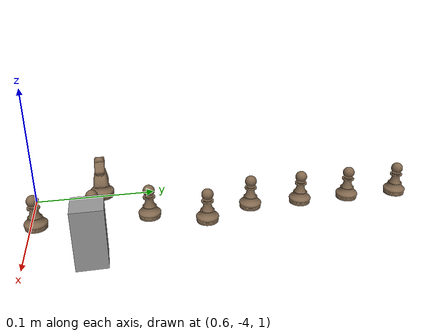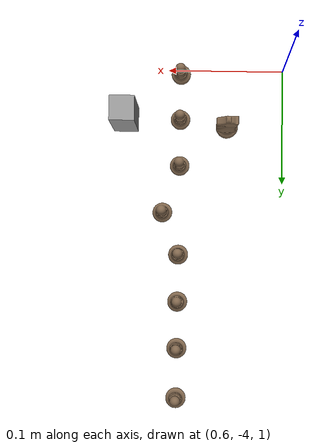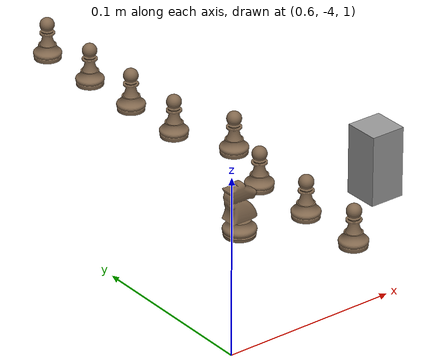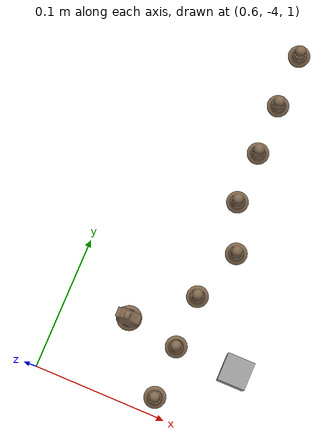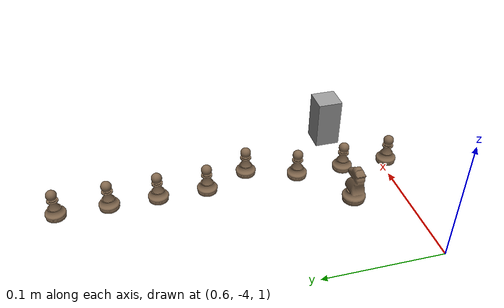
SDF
<sdf version="1.7">
 <world name="default">
  <model name="ground_plane">
   <static>1</static>
   <link name="link">
    <collision name="collision">
     <geometry><plane><normal>0 0 1</normal><size>100 100</size></plane></geometry>
     <surface>
      <contact><collide_bitmask>65535</collide_bitmask></contact>
      <friction><ode><mu>100</mu><mu2>50</mu2></ode></friction>
     </surface>
    </collision>
    <visual name="visual">
     <cast_shadows>0</cast_shadows>
     <geometry><plane><normal>0 0 1</normal><size>100 100</size></plane></geometry>
     <material>
      <script><uri>file://media/materials/scripts/gazebo.material</uri><name>Gazebo/Grey</name></script>
     </material>
    </visual>
   </link>
  </model>
  <model name="knight_white">
   <static>0</static>
   <link name="link_0">
    <inertial>
     <mass>0.01</mass>
     <inertia><ixx>1e-06</ixx><ixy>0</ixy><ixz>0</ixz><iyy>1e-06</iyy><iyz>0</iyz><izz>5e-07</izz></inertia>
    </inertial>
    <kinematic>1</kinematic>
    <visual name="visual">
     <geometry><mesh><uri>model://knight_white/meshes/knight.dae</uri><scale>1 1 1</scale></mesh></geometry>
     <material>
      <lighting>1</lighting>
      <script><uri>file://media/materials/scripts/gazebo.material</uri><name>Gazebo/Grey</name></script>
      <shader type="vertex"><normal_map>__default__</normal_map></shader>
      <ambient>1 0.894 0.71 1</ambient>
      <diffuse>0.5 0.4 0.3 1</diffuse>
      <specular>0.01 0.01 0.01 1</specular>
      <emissive>0 0 0 1</emissive>
     </material>
    </visual>
    <collision name="collision">
     <pose>0 0 0.015 0 -0 0</pose>
     <geometry><cylinder><radius>0.005</radius><length>0.03</length></cylinder></geometry>
     <surface>
      <friction><ode><mu>1</mu><mu2>1</mu2></ode></friction>
      <contact><ode><kp>1e+07</kp><kd>1</kd><max_vel>0.001</max_vel><min_depth>0.1</min_depth></ode></contact>
     </surface>
    </collision>
   </link>
   <pose>0.649689 -3.94259 1.02621 0 -0 1.57236</pose>
  </model>
  <model name="pawn_white">
   <static>0</static>
   <link name="link_0">
    <inertial>
     <mass>0.01</mass>
     <inertia><ixx>1e-06</ixx><ixy>0</ixy><ixz>0</ixz><iyy>1e-06</iyy><iyz>0</iyz><izz>5e-07</izz></inertia>
    </inertial>
    <kinematic>1</kinematic>
    <visual name="visual">
     <geometry><mesh><uri>model://pawn_white/meshes/pawn.dae</uri><scale>1 1 1</scale></mesh></geometry>
     <material>
      <lighting>1</lighting>
      <script><uri>file://media/materials/scripts/gazebo.material</uri><name>Gazebo/Grey</name></script>
      <shader type="vertex"><normal_map>__default__</normal_map></shader>
      <ambient>1 0.894 0.71 1</ambient>
      <diffuse>0.5 0.4 0.3 1</diffuse>
      <specular>0.01 0.01 0.01 1</specular>
      <emissive>0 0 0 1</emissive>
     </material>
    </visual>
    <collision name="collision">
     <pose>0 0 0.015 0 -0 0</pose>
     <geometry><cylinder><radius>0.005</radius><length>0.03</length></cylinder></geometry>
     <surface>
      <friction><ode><mu>1</mu><mu2>1</mu2></ode></friction>
      <contact><ode><kp>1e+07</kp><kd>1</kd><max_vel>0.001</max_vel><min_depth>0.1</min_depth></ode></contact>
     </surface>
    </collision>
   </link>
   <pose>0.688244 -3.83616 1.02621 0 -0 0</pose>
  </model>
  <model name="pawn_white_clone">
   <static>0</static>
   <link name="link_0">
    <inertial>
     <mass>0.01</mass>
     <inertia><ixx>1e-06</ixx><ixy>0</ixy><ixz>0</ixz><iyy>1e-06</iyy><iyz>0</iyz><izz>5e-07</izz></inertia>
    </inertial>
    <kinematic>1</kinematic>
    <visual name="visual">
     <geometry><mesh><uri>model://pawn_white/meshes/pawn.dae</uri><scale>1 1 1</scale></mesh></geometry>
     <material>
      <lighting>1</lighting>
      <script><uri>file://media/materials/scripts/gazebo.material</uri><name>Gazebo/Grey</name></script>
      <shader type="vertex"><normal_map>__default__</normal_map></shader>
      <ambient>1 0.894 0.71 1</ambient>
      <diffuse>0.5 0.4 0.3 1</diffuse>
      <specular>0.01 0.01 0.01 1</specular>
      <emissive>0 0 0 1</emissive>
     </material>
    </visual>
    <collision name="collision">
     <pose>0 0 0.015 0 -0 0</pose>
     <geometry><cylinder><radius>0.005</radius><length>0.03</length></cylinder></geometry>
     <surface>
      <friction><ode><mu>1</mu><mu2>1</mu2></ode></friction>
      <contact><ode><kp>1e+07</kp><kd>1</kd><max_vel>0.001</max_vel><min_depth>0.1</min_depth></ode></contact>
     </surface>
    </collision>
   </link>
   <pose>0.688244 -3.79784 1.02621 0 -0 0</pose>
  </model>
  <model name="pawn_white_clone_0">
   <static>0</static>
   <link name="link_0">
    <inertial>
     <mass>0.01</mass>
     <inertia><ixx>1e-06</ixx><ixy>0</ixy><ixz>0</ixz><iyy>1e-06</iyy><iyz>0</iyz><izz>5e-07</izz></inertia>
    </inertial>
    <kinematic>1</kinematic>
    <visual name="visual">
     <geometry><mesh><uri>model://pawn_white/meshes/pawn.dae</uri><scale>1 1 1</scale></mesh></geometry>
     <material>
      <lighting>1</lighting>
      <script><uri>file://media/materials/scripts/gazebo.material</uri><name>Gazebo/Grey</name></script>
      <shader type="vertex"><normal_map>__default__</normal_map></shader>
      <ambient>1 0.894 0.71 1</ambient>
      <diffuse>0.5 0.4 0.3 1</diffuse>
      <specular>0.01 0.01 0.01 1</specular>
      <emissive>0 0 0 1</emissive>
     </material>
    </visual>
    <collision name="collision">
     <pose>0 0 0.015 0 -0 0</pose>
     <geometry><cylinder><radius>0.005</radius><length>0.03</length></cylinder></geometry>
     <surface>
      <friction><ode><mu>1</mu><mu2>1</mu2></ode></friction>
      <contact><ode><kp>1e+07</kp><kd>1</kd><max_vel>0.001</max_vel><min_depth>0.1</min_depth></ode></contact>
     </surface>
    </collision>
   </link>
   <pose>0.688244 -3.98716 1.02621 0 -0 0</pose>
  </model>
  <model name="pawn_white_clone_1">
   <static>0</static>
   <link name="link_0">
    <inertial>
     <mass>0.01</mass>
     <inertia><ixx>1e-06</ixx><ixy>0</ixy><ixz>0</ixz><iyy>1e-06</iyy><iyz>0</iyz><izz>5e-07</izz></inertia>
    </inertial>
    <kinematic>1</kinematic>
    <visual name="visual">
     <geometry><mesh><uri>model://pawn_white/meshes/pawn.dae</uri><scale>1 1 1</scale></mesh></geometry>
     <material>
      <lighting>1</lighting>
      <script><uri>file://media/materials/scripts/gazebo.material</uri><name>Gazebo/Grey</name></script>
      <shader type="vertex"><normal_map>__default__</normal_map></shader>
      <ambient>1 0.894 0.71 1</ambient>
      <diffuse>0.5 0.4 0.3 1</diffuse>
      <specular>0.01 0.01 0.01 1</specular>
      <emissive>0 0 0 1</emissive>
     </material>
    </visual>
    <collision name="collision">
     <pose>0 0 0.015 0 -0 0</pose>
     <geometry><cylinder><radius>0.005</radius><length>0.03</length></cylinder></geometry>
     <surface>
      <friction><ode><mu>1</mu><mu2>1</mu2></ode></friction>
      <contact><ode><kp>1e+07</kp><kd>1</kd><max_vel>0.001</max_vel><min_depth>0.1</min_depth></ode></contact>
     </surface>
    </collision>
   </link>
   <pose>0.688244 -3.94848 1.02621 0 -0 0</pose>
  </model>
  <model name="pawn_white_clone_2">
   <static>0</static>
   <link name="link_0">
    <inertial>
     <mass>0.01</mass>
     <inertia><ixx>1e-06</ixx><ixy>0</ixy><ixz>0</ixz><iyy>1e-06</iyy><iyz>0</iyz><izz>5e-07</izz></inertia>
    </inertial>
    <kinematic>1</kinematic>
    <visual name="visual">
     <geometry><mesh><uri>model://pawn_white/meshes/pawn.dae</uri><scale>1 1 1</scale></mesh></geometry>
     <material>
      <lighting>1</lighting>
      <script><uri>file://media/materials/scripts/gazebo.material</uri><name>Gazebo/Grey</name></script>
      <shader type="vertex"><normal_map>__default__</normal_map></shader>
      <ambient>1 0.894 0.71 1</ambient>
      <diffuse>0.5 0.4 0.3 1</diffuse>
      <specular>0.01 0.01 0.01 1</specular>
      <emissive>0 0 0 1</emissive>
     </material>
    </visual>
    <collision name="collision">
     <pose>0 0 0.015 0 -0 0</pose>
     <geometry><cylinder><radius>0.005</radius><length>0.03</length></cylinder></geometry>
     <surface>
      <friction><ode><mu>1</mu><mu2>1</mu2></ode></friction>
      <contact><ode><kp>1e+07</kp><kd>1</kd><max_vel>0.001</max_vel><min_depth>0.1</min_depth></ode></contact>
     </surface>
    </collision>
   </link>
   <pose>0.688244 -3.9097 1.02621 0 -0 0</pose>
  </model>
  <model name="pawn_white_clone_3">
   <static>0</static>
   <link name="link_0">
    <inertial>
     <mass>0.01</mass>
     <inertia><ixx>1e-06</ixx><ixy>0</ixy><ixz>0</ixz><iyy>1e-06</iyy><iyz>0</iyz><izz>5e-07</izz></inertia>
    </inertial>
    <kinematic>1</kinematic>
    <visual name="visual">
     <geometry><mesh><uri>model://pawn_white/meshes/pawn.dae</uri><scale>1 1 1</scale></mesh></geometry>
     <material>
      <lighting>1</lighting>
      <script><uri>file://media/materials/scripts/gazebo.material</uri><name>Gazebo/Grey</name></script>
      <shader type="vertex"><normal_map>__default__</normal_map></shader>
      <ambient>1 0.894 0.71 1</ambient>
      <diffuse>0.5 0.4 0.3 1</diffuse>
      <specular>0.01 0.01 0.01 1</specular>
      <emissive>0 0 0 1</emissive>
     </material>
    </visual>
    <collision name="collision">
     <pose>0 0 0.015 0 -0 0</pose>
     <geometry><cylinder><radius>0.005</radius><length>0.03</length></cylinder></geometry>
     <surface>
      <friction><ode><mu>1</mu><mu2>1</mu2></ode></friction>
      <contact><ode><kp>1e+07</kp><kd>1</kd><max_vel>0.001</max_vel><min_depth>0.1</min_depth></ode></contact>
     </surface>
    </collision>
   </link>
   <pose>0.701821 -3.8707 1.02621 0 -0 0</pose>
  </model>
  <model name="pawn_white_clone_4">
   <static>0</static>
   <link name="link_0">
    <inertial>
     <mass>0.01</mass>
     <inertia><ixx>1e-06</ixx><ixy>0</ixy><ixz>0</ixz><iyy>1e-06</iyy><iyz>0</iyz><izz>5e-07</izz></inertia>
    </inertial>
    <kinematic>1</kinematic>
    <visual name="visual">
     <geometry><mesh><uri>model://pawn_white/meshes/pawn.dae</uri><scale>1 1 1</scale></mesh></geometry>
     <material>
      <lighting>1</lighting>
      <script><uri>file://media/materials/scripts/gazebo.material</uri><name>Gazebo/Grey</name></script>
      <shader type="vertex"><normal_map>__default__</normal_map></shader>
      <ambient>1 0.894 0.71 1</ambient>
      <diffuse>0.5 0.4 0.3 1</diffuse>
      <specular>0.01 0.01 0.01 1</specular>
      <emissive>0 0 0 1</emissive>
     </material>
    </visual>
    <collision name="collision">
     <pose>0 0 0.015 0 -0 0</pose>
     <geometry><cylinder><radius>0.005</radius><length>0.03</length></cylinder></geometry>
     <surface>
      <friction><ode><mu>1</mu><mu2>1</mu2></ode></friction>
      <contact><ode><kp>1e+07</kp><kd>1</kd><max_vel>0.001</max_vel><min_depth>0.1</min_depth></ode></contact>
     </surface>
    </collision>
   </link>
   <pose>0.688244 -3.76037 1.02621 0 -0 0</pose>
  </model>
  <model name="pawn_white_clone_5">
   <static>0</static>
   <link name="link_0">
    <inertial>
     <mass>0.01</mass>
     <inertia><ixx>1e-06</ixx><ixy>0</ixy><ixz>0</ixz><iyy>1e-06</iyy><iyz>0</iyz><izz>5e-07</izz></inertia>
    </inertial>
    <kinematic>1</kinematic>
    <visual name="visual">
     <geometry><mesh><uri>model://pawn_white/meshes/pawn.dae</uri><scale>1 1 1</scale></mesh></geometry>
     <material>
      <lighting>1</lighting>
      <script><uri>file://media/materials/scripts/gazebo.material</uri><name>Gazebo/Grey</name></script>
      <shader type="vertex"><normal_map>__default__</normal_map></shader>
      <ambient>1 0.894 0.71 1</ambient>
      <diffuse>0.5 0.4 0.3 1</diffuse>
      <specular>0.01 0.01 0.01 1</specular>
      <emissive>0 0 0 1</emissive>
     </material>
    </visual>
    <collision name="collision">
     <pose>0 0 0.015 0 -0 0</pose>
     <geometry><cylinder><radius>0.005</radius><length>0.03</length></cylinder></geometry>
     <surface>
      <friction><ode><mu>1</mu><mu2>1</mu2></ode></friction>
      <contact><ode><kp>1e+07</kp><kd>1</kd><max_vel>0.001</max_vel><min_depth>0.1</min_depth></ode></contact>
     </surface>
    </collision>
   </link>
   <pose>0.688244 -3.72086 1.02621 0 -0 0</pose>
  </model>
  <model name="unit_box">
   <link name="link">
    <inertial>
     <mass>1</mass>
     <inertia>
      <ixx>0.166667</ixx>
      <ixy>0</ixy>
      <ixz>0</ixz>
      <iyy>0.166667</iyy>
      <iyz>0</iyz>
      <izz>0.166667</izz>
     </inertia>
    </inertial>
    <visual name="visual">
     <geometry><box><size>0.02 0.02 0.04</size></box></geometry>
     <material>
      <script><name>Gazebo/Grey</name><uri>file://media/materials/scripts/gazebo.material</uri></script>
      <shader type="pixel"><normal_map>__default__</normal_map></shader>
      <ambient>0.3 0.3 0.3 1</ambient>
      <diffuse>0.7 0.7 0.7 1</diffuse>
      <specular>0.01 0.01 0.01 1</specular>
      <emissive>0 0 0 1</emissive>
     </material>
    </visual>
    <collision name="collision">
     <geometry><box><size>0.02 0.02 0.04</size></box></geometry>
     <surface>
      <friction>
       <ode><mu>1</mu><mu2>1</mu2><fdir1>0 0 0</fdir1><slip1>0</slip1><slip2>0</slip2></ode>
       <torsional>
        <coefficient>1</coefficient>
        <patch_radius>0</patch_radius>
        <surface_radius>0</surface_radius>
        <use_patch_radius>1</use_patch_radius>
        <ode><slip>0</slip></ode>
       </torsional>
      </friction>
      <bounce><restitution_coefficient>0</restitution_coefficient><threshold>1e+06</threshold></bounce>
      <contact>
       <collide_without_contact>0</collide_without_contact>
       <collide_without_contact_bitmask>1</collide_without_contact_bitmask>
       <collide_bitmask>1</collide_bitmask>
       <ode>
        <soft_cfm>0</soft_cfm>
        <soft_erp>0.2</soft_erp>
        <kp>1e+13</kp>
        <kd>1</kd>
        <max_vel>0.01</max_vel>
        <min_depth>0</min_depth>
       </ode>
       <bullet>
        <split_impulse>1</split_impulse>
        <split_impulse_penetration_threshold>-0.01</split_impulse_penetration_threshold>
        <soft_cfm>0</soft_cfm>
        <soft_erp>0.2</soft_erp>
        <kp>1e+13</kp>
        <kd>1</kd>
       </bullet>
      </contact>
     </surface>
    </collision>
   </link>
   <static>0</static>
   <pose>0.733487 -3.94914 1.045 3e-06 -4e-06 0.004482</pose>
  </model>
 </world>
</sdf>
